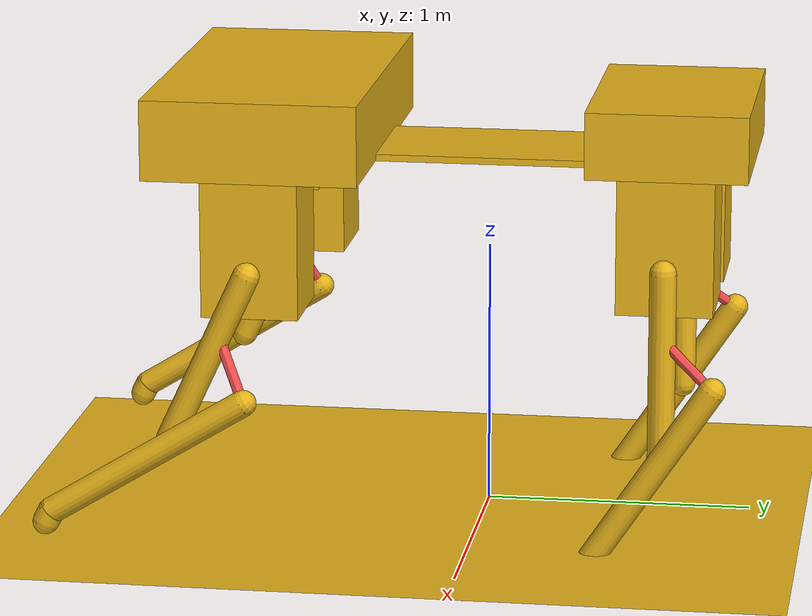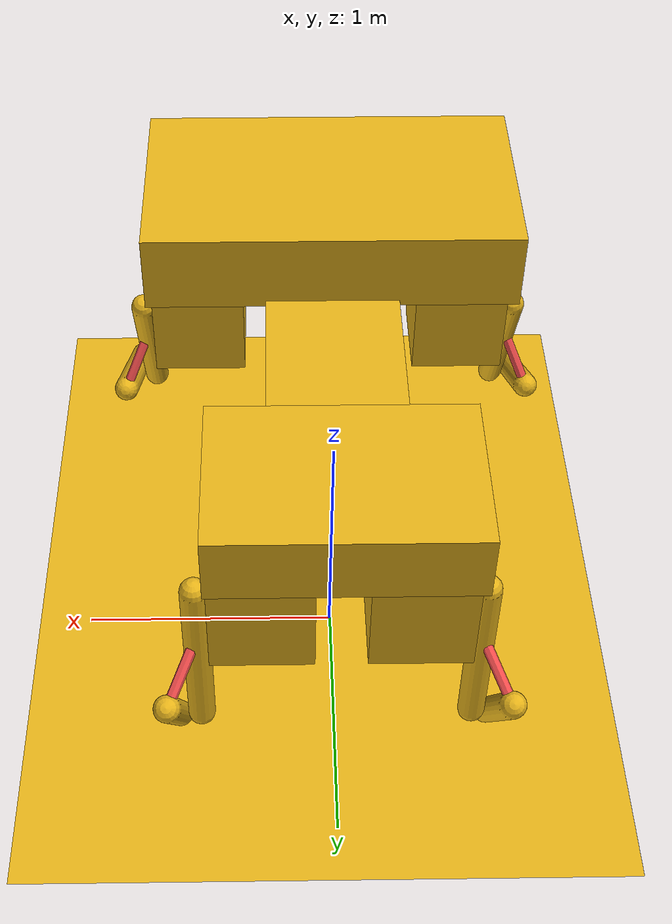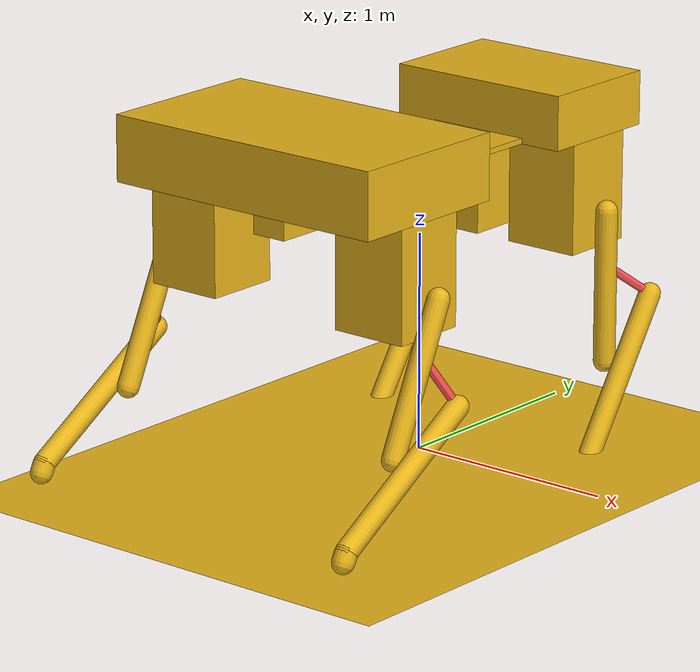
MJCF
<mujoco model="quadruped">
  <compiler angle="degree" coordinate="global" inertiafromgeom="true"/>
  <option gravity="0 0 -98.1"/>
  <default>
    <geom density="1" rgba=".9 .7 .1 1" size="0.05"/>
    <site rgba=".9 .9 .9 1" size="0.005" type="sphere"/>
    <joint axis="1 0 0" limited="true" range="-100 100" solimplimit="0.95 0.95 0.1" type="hinge"/>
    <tendon limited="true" range="0.25 1" rgba=".95 .3 .3 1" stiffness="4000" width="0.02"/>
  </default>
  <asset>
    <texture builtin="gradient" height="128" rgb1=".4 .6 .8" rgb2="0 0 0" type="skybox" width="128"/>
    <texture builtin="flat" height="1278" mark="cross" markrgb="1 1 1" name="texgeom" random="0.01" rgb1="0.8 0.6 0.4" rgb2="0.8 0.6 0.4" type="cube" width="127"/>
    <texture builtin="checker" height="512" name="texplane" rgb1=".2 .3 .4" rgb2=".1 0.15 0.2" type="2d" width="512"/>
    <material name="MatPlane" reflectance="0" texrepeat="1 1" texture="texplane" texuniform="true"/>
    <material name="geom" texture="texgeom" texuniform="true"/>
  </asset>
  <worldbody>
    <geom condim="3" material="MatPlane" name="floor" pos="0 0 0" size="50 50 .125" type="plane"/>
    <body name="torso">
      <geom mass="0.17900" pos="0.00000 -0.80000 1.51967" size="0.70000 0.40000 0.15000" type="box"/>
      <geom mass="0.03000" pos="0.00000 0.00000 1.38217" size="0.25000 0.40000 0.01250" type="box" name="torso_geom"/>
      <geom mass="0.17900" pos="0.00000 0.70000 1.49467" size="0.45000 0.30000 0.12500" type="box"/>
      <joint limited="false" name="gravity" type="free"/>
      <site name="sensor_torso" pos="0 0 1.36967"/>
      <body>
        <geom mass="0.067" pos="0.52000 -0.80000 1.11667" size="0.18000 0.18000 0.25300" type="box"/>
        <body>
          <geom fromto="0.75100 -0.80000 1.03967 0.75100 -1.09583 0.40525" type="capsule"/>
          <joint damping="0.2" name="shoulder_1" pos="0.75100 -0.80000 1.03967"/>
          <site name="s1_1" pos="0.75100 -0.90565 0.81309"/>
          <body>
            <geom fromto="0.85600 -0.79723 0.58783 0.85600 -1.52241 0.14443" type="capsule"/>
            <joint damping="0.2" limited="true" pos="0.75100 -1.09583 0.40525" range="-60 0"/>
            <site name="s1_2" pos="0.85600 -0.79723 0.58783"/>
            <body pos="0.85600 -1.52241 0.14443">
              <geom friction="1 0.005 0.0001" fromto="0.85600 -1.52241 0.14443 0.85600 -1.54241 0.10443" type="capsule"/>
              <site name="sensor_1" pos="0.85600 -1.52241 0.14443"/>
            </body>
          </body>
        </body>
      </body>
      <body>
        <geom mass="0.067" pos="-0.52000 -0.80000 1.11667" size="0.18000 0.18000 0.25300" type="box"/>
        <body>
          <geom fromto="-0.75100 -0.80000 1.03967 -0.75100 -1.09583 0.40525" type="capsule"/>
          <joint damping="0.2" name="shoulder_2" pos="-0.75100 -0.80000 1.03967"/>
          <site name="s2_1" pos="-0.75100 -0.90565 0.81309"/>
          <body>
            <geom fromto="-0.85600 -0.79723 0.58783 -0.85600 -1.52241 0.14443" type="capsule"/>
            <joint damping="0.2" limited="true" pos="-0.75100 -1.09583 0.40525" range="-60 0"/>
            <site name="s2_2" pos="-0.85600 -0.79723 0.58783"/>
            <body pos="-0.85600 -1.52241 0.14443">
              <geom friction="1 0.005 0.0001" fromto="-0.85600 -1.52241 0.14443 -0.85600 -1.54241 0.10443" type="capsule"/>
              <site name="sensor_2" pos="-0.85600 -1.52241 0.14443"/>
            </body>
          </body>
        </body>
      </body>
      <body>
        <geom mass="0.067" pos="0.27000 0.70000 1.11667" size="0.18000 0.18000 0.25300" type="box"/>
        <body>
          <geom fromto="0.50100 0.70000 1.03967 0.50100 0.70000 0.33967" type="capsule"/>
          <joint damping="0.2" name="shoulder_3" pos="0.50100 0.70000 1.03967"/>
          <site name="s3_1" pos="0.50100 0.70000 0.78967"/>
          <body>
            <geom fromto="0.60600 0.89347 0.63133 0.60600 0.42361 -0.07700" type="capsule"/>
            <joint damping="0.2" limited="true" pos="0.50100 0.70000 0.33967" range="-60 0"/>
            <site name="s3_2" pos="0.60600 0.89347 0.63133"/>
            <body pos="0.60600 0.42361 -0.07700">
              <geom friction="1 0.005 0.0001" fromto="0.60600 0.42361 -0.07700 0.60600 0.40361 -0.11700" type="capsule"/>
              <site name="sensor_3" pos="0.60600 0.42361 -0.07700"/>
            </body>
          </body>
        </body>
      </body>
      <body>
        <geom mass="0.067" pos="-0.27000 0.70000 1.11667" size="0.18000 0.18000 0.25300" type="box"/>
        <body>
          <geom fromto="-0.50100 0.70000 1.03967 -0.50100 0.70000 0.33967" type="capsule"/>
          <joint damping="0.2" name="shoulder_4" pos="-0.50100 0.70000 1.03967"/>
          <site name="s4_1" pos="-0.50100 0.70000 0.78967"/>
          <body>
            <geom fromto="-0.60600 0.89347 0.63133 -0.60600 0.42361 -0.07700" type="capsule"/>
            <joint damping="0.2" limited="true" pos="-0.50100 0.70000 0.33967" range="-60 0"/>
            <site name="s4_2" pos="-0.60600 0.89347 0.63133"/>
            <body pos="-0.60600 0.42361 -0.07700">
              <geom friction="1 0.005 0.0001" fromto="-0.60600 0.42361 -0.07700 -0.60600 0.40361 -0.11700" type="capsule"/>
              <site name="sensor_4" pos="-0.60600 0.42361 -0.07700"/>
            </body>
          </body>
        </body>
      </body>
      <body name="battery_body">
        <geom mass="0.11700" pos="0.00000 -0.83000 1.26467" size="0.08500 0.18500 0.05250" type="box"/>
      </body>
    </body>
  </worldbody>
  <tendon>
    <spatial range="0.27115 2.71155" stiffness="500">
      <site site="s1_1"/>
      <site site="s1_2"/>
    </spatial>
  </tendon>
  <tendon>
    <spatial range="0.27115 2.71155" stiffness="500">
      <site site="s2_1"/>
      <site site="s2_2"/>
    </spatial>
  </tendon>
  <tendon>
    <spatial range="0.27115 2.71155" stiffness="500">
      <site site="s3_1"/>
      <site site="s3_2"/>
    </spatial>
  </tendon>
  <tendon>
    <spatial range="0.27115 2.71155" stiffness="500">
      <site site="s4_1"/>
      <site site="s4_2"/>
    </spatial>
  </tendon>
  <actuator>
    <position forcelimited="true" forcerange="-50 50" gear="1" joint="shoulder_1" kp="254"/>
    <position forcelimited="true" forcerange="-50 50" gear="1" joint="shoulder_2" kp="254"/>
    <position forcelimited="true" forcerange="-50 50" gear="1" joint="shoulder_3" kp="254"/>
    <position forcelimited="true" forcerange="-50 50" gear="1" joint="shoulder_4" kp="254"/>
  </actuator>
  <sensor>
    <force site="sensor_1"/>
    <force site="sensor_2"/>
    <force site="sensor_3"/>
    <force site="sensor_4"/>
    <accelerometer site="sensor_torso"/>
  </sensor>
</mujoco>
